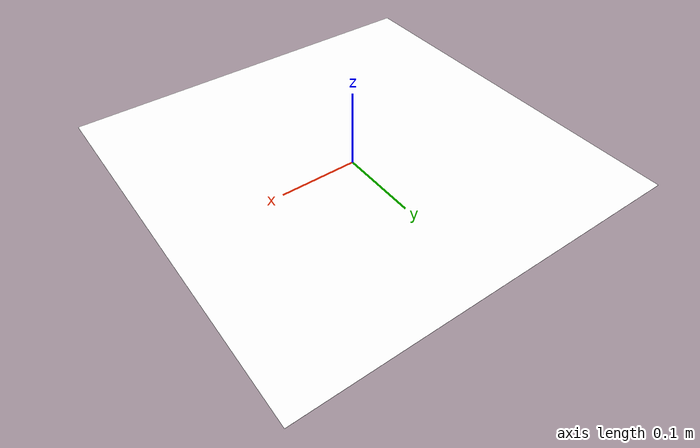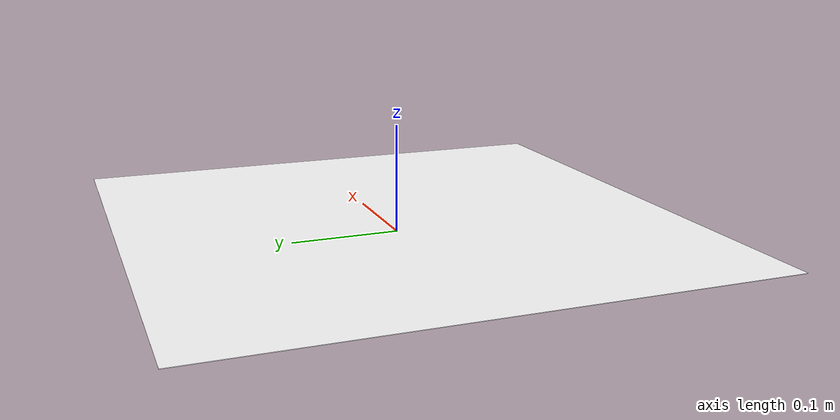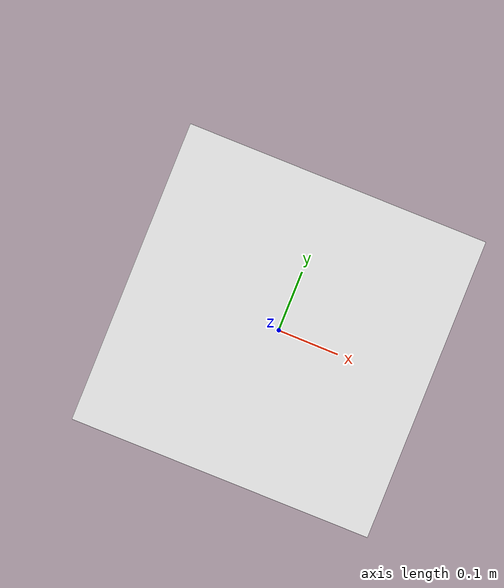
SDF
<?xml version="1.0" encoding="UTF-8"?>
<sdf version='1.9'>
  <model name='apriltag_1'>
    <static>true</static>
    <pose>0 0 0 0 0 0</pose>
    <link name='base'>
      <collision name='base_collision'>
        <pose>0 0 0.005 0 0 0</pose>
        <geometry>
          <box>
            <size>0.5 0.5 0.01</size>
          </box>
        </geometry>
      </collision>
      <visual name='base_visual'>
        <pose>0 0 0.012 0 0 0</pose>
        <geometry>
          <plane>
            <normal>0 0 1</normal>
            <size>0.5 0.5</size>
          </plane>
        </geometry>
        <material>
          <diffuse>1 1 1 1</diffuse>
          <specular>0.4 0.4 0.4 1</specular>
          <pbr>
            <metal>
              <albedo_map>model://apriltag_1/tag25h9-1.png</albedo_map>
            </metal>
          </pbr>
        </material>
      </visual>
    </link>
  </model>
</sdf>
